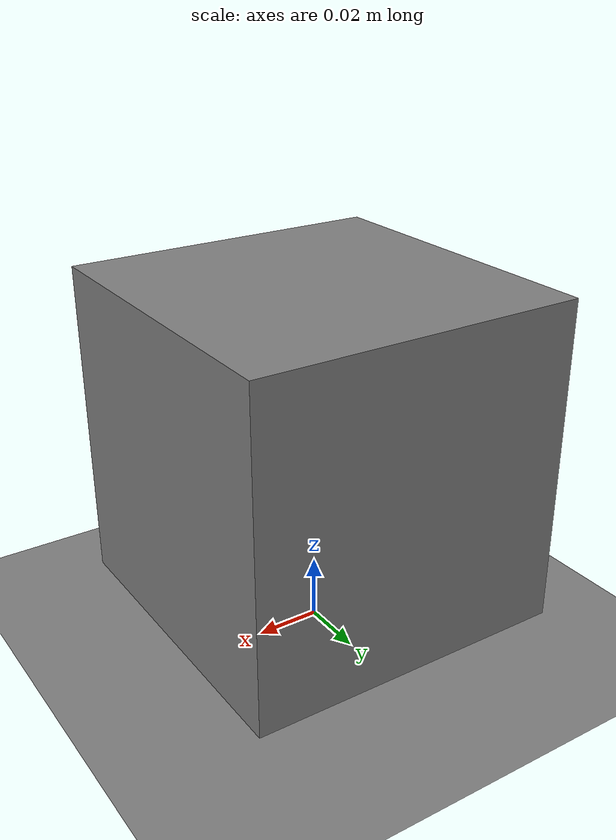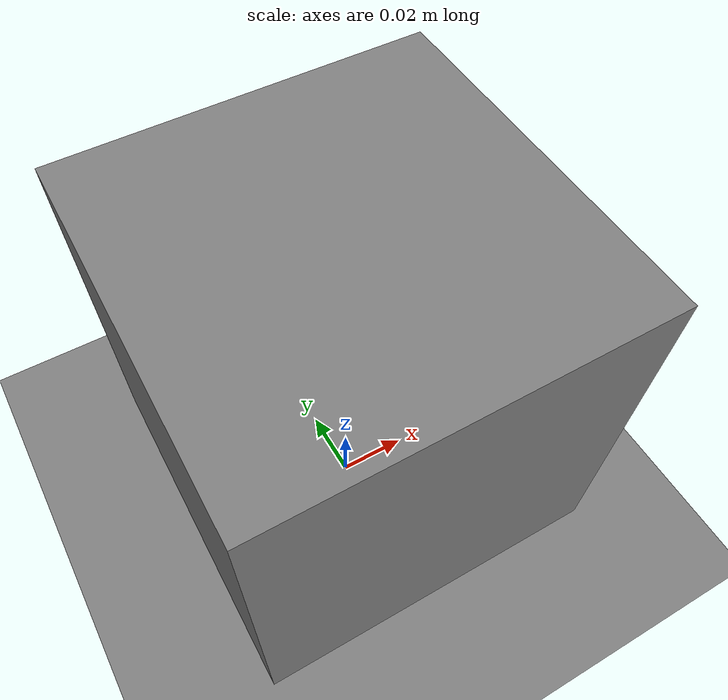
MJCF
<!-- Packet M11/X4 oracle 2: one block that falls onto a floor and is pushed along it by a
     position servo, so a mass, a friction and a gain scale each change the trajectory. -->
<mujoco model="set_params">
  <option timestep="0.002"/>
  <worldbody>
    <geom name="floor" type="plane" size="1 1 0.1"/>
    <body name="block" pos="0 0 0.06">
      <joint name="x" type="slide" axis="1 0 0"/>
      <joint name="z" type="slide" axis="0 0 1"/>
      <geom name="block_geom" type="box" size="0.05 0.05 0.05" mass="1"/>
    </body>
  </worldbody>
  <actuator>
    <position name="push" joint="x" kp="100" kv="5"/>
  </actuator>
</mujoco>
